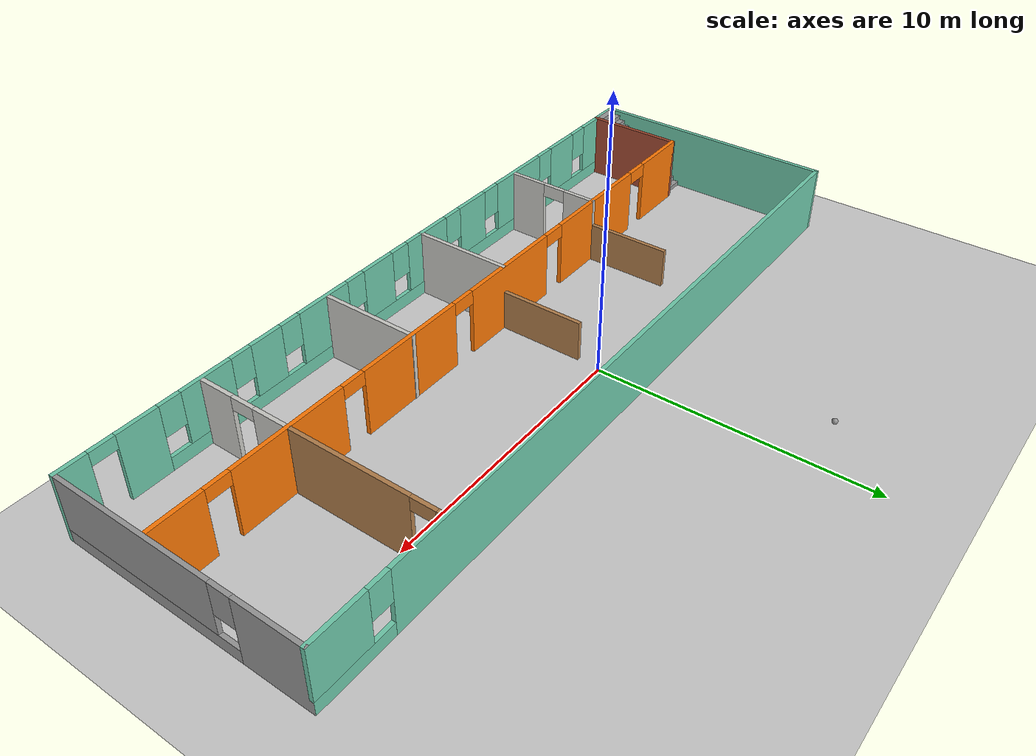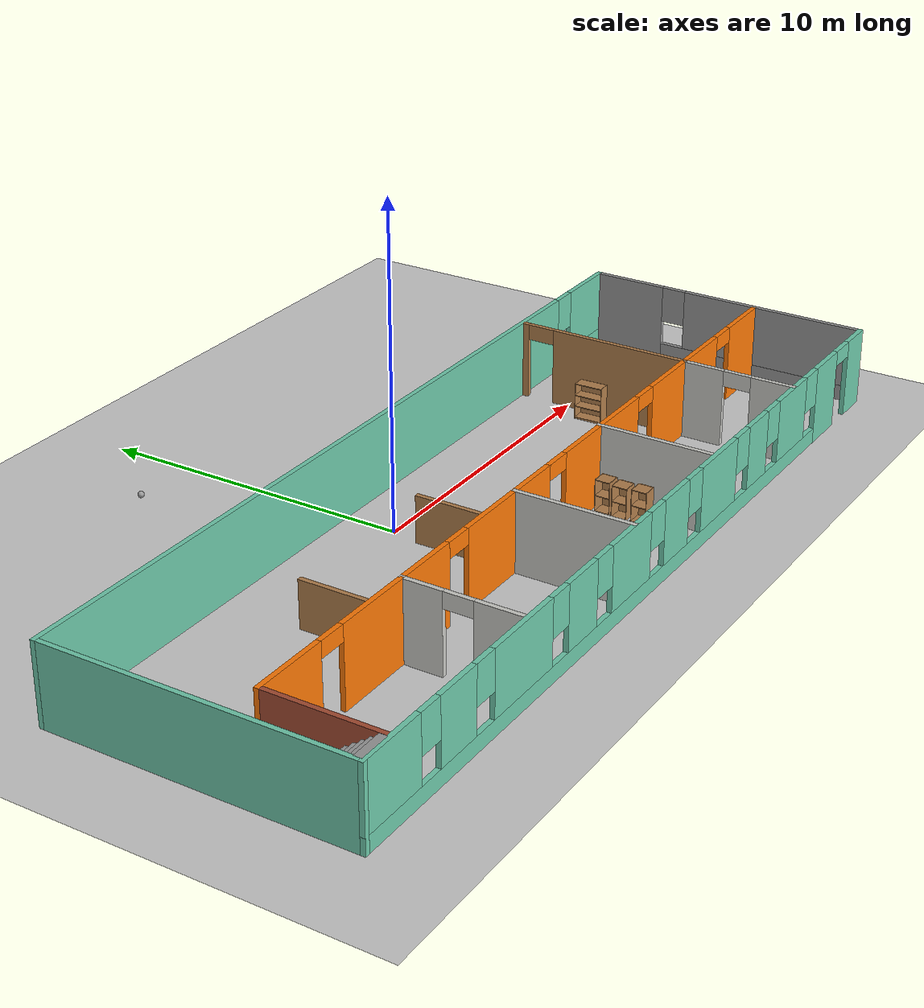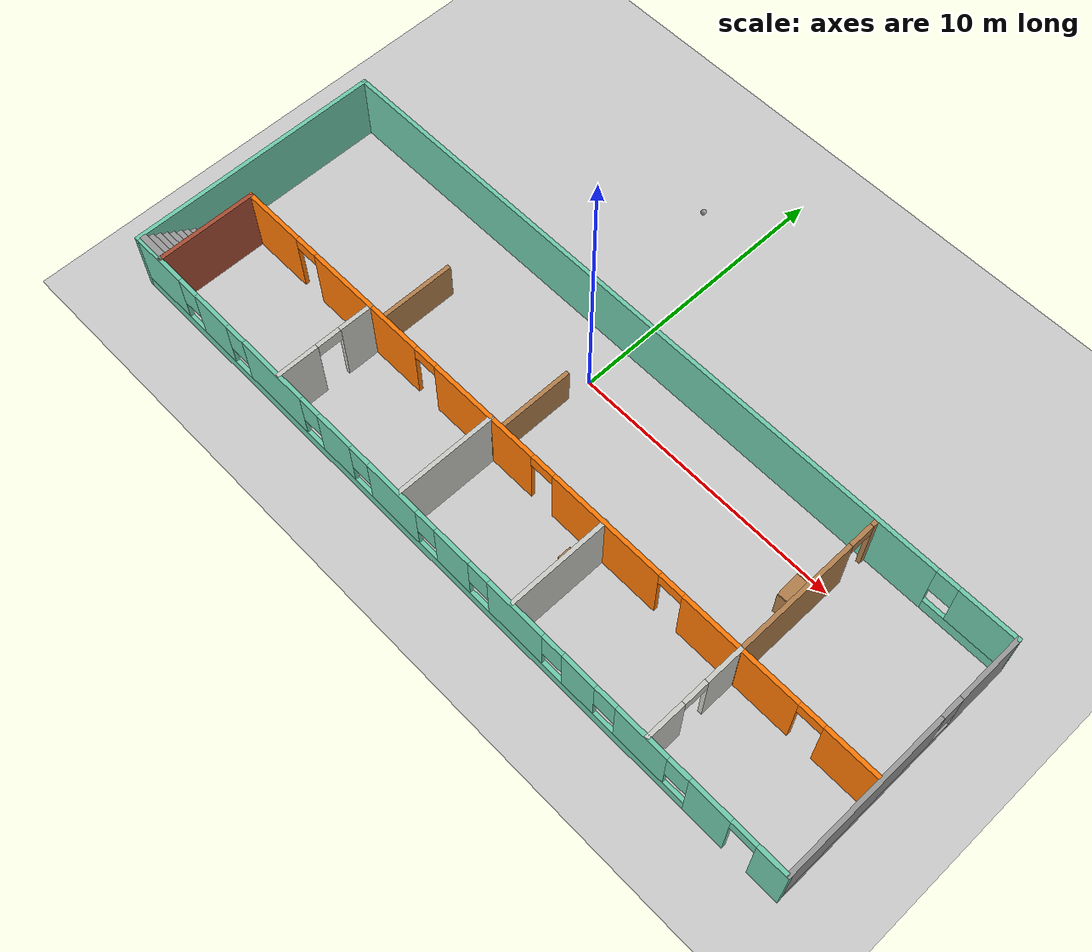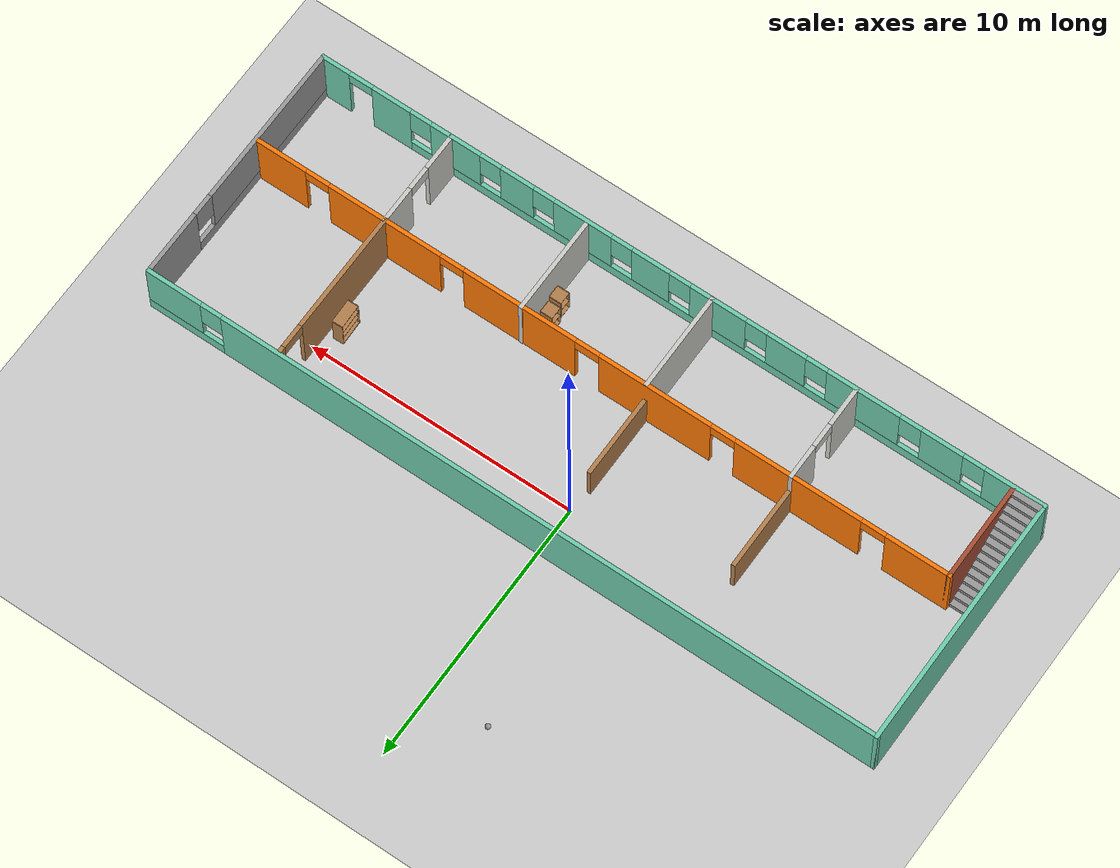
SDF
<sdf version="1.6">
 <world name="default">
  <plugin name="hello" filename="libhello.so"/>
  <light name="sun" type="directional">
   <pose>0 0 10 0 -0 0</pose>
   <diffuse>0.8 0.8 0.8 1</diffuse>
   <specular>0.2 0.2 0.2 1</specular>
   <attenuation>
    <range>1000</range>
    <constant>0.9</constant>
    <linear>0.01</linear>
    <quadratic>0.001</quadratic>
   </attenuation>
   <direction>-0.5 0.1 -0.9</direction>
  </light>
  <model name="ground_plane">
   <static>1</static>
   <link name="link">
    <collision name="collision">
     <geometry><plane><normal>0 0 1</normal><size>100 100</size></plane></geometry>
     <surface>
      <contact><collide_bitmask>65535</collide_bitmask></contact>
      <friction><ode><mu>100</mu><mu2>50</mu2></ode></friction>
     </surface>
    </collision>
    <visual name="visual">
     <cast_shadows>0</cast_shadows>
     <geometry><plane><normal>0 0 1</normal><size>100 100</size></plane></geometry>
     <material>
      <script><uri>file://media/materials/scripts/gazebo.material</uri><name>Gazebo/Grey</name></script>
     </material>
    </visual>
   </link>
  </model>
  <gravity>0 0 -9.8</gravity>
  <magnetic_field>6e-06 2.3e-05 -4.2e-05</magnetic_field>
  <atmosphere type="adiabatic"/>
  <physics name="default_physics" default="0" type="ode">
   <max_step_size>0.001</max_step_size>
   <real_time_factor>1</real_time_factor>
   <real_time_update_rate>1000</real_time_update_rate>
  </physics>
  <scene><ambient>0.4 0.4 0.4 1</ambient><background>0.7 0.7 0.7 1</background><shadows>1</shadows></scene>
  <spherical_coordinates>
   <surface_model>EARTH_WGS84</surface_model>
   <latitude_deg>0</latitude_deg>
   <longitude_deg>0</longitude_deg>
   <elevation>0</elevation>
   <heading_deg>0</heading_deg>
  </spherical_coordinates>
  <model name="cabinet">
   <static>1</static>
   <link name="cabinet_bottom_plate">
    <inertial>
     <pose>0 0 -1 0 -0 0</pose>
     <inertia><ixx>2.05</ixx><ixy>0</ixy><ixz>0</ixz><iyy>2.05</iyy><iyz>0</iyz><izz>2.05</izz></inertia>
     <mass>25</mass>
    </inertial>
    <collision name="cabinet_bottom_plate_geom">
     <pose>0 0 0.01 0 -0 0</pose>
     <geometry><box><size>0.45 0.45 0.02</size></box></geometry>
    </collision>
    <visual name="cabinet_bottom_plate_geom_visual">
     <pose>0 0 0.01 0 -0 0</pose>
     <geometry><box><size>0.45 0.45 0.02</size></box></geometry>
     <material>
      <script><uri>file://media/materials/scripts/gazebo.material</uri><name>Gazebo/Wood</name></script>
     </material>
    </visual>
    <collision name="cabinet_bottom_plate_geom_cabinet_back_plate">
     <pose>0.235 0 0.51 0 -0 0</pose>
     <geometry><box><size>0.02 0.45 1.02</size></box></geometry>
    </collision>
    <visual name="cabinet_bottom_plate_geom_cabinet_back_plate_visual">
     <pose>0.235 0 0.51 0 -0 0</pose>
     <geometry><box><size>0.02 0.45 1.02</size></box></geometry>
     <material>
      <script><uri>file://media/materials/scripts/gazebo.material</uri><name>Gazebo/Wood</name></script>
     </material>
    </visual>
    <collision name="cabinet_bottom_plate_geom_cabinet_left_plate">
     <pose>0 0.235 0.51 0 -0 0</pose>
     <geometry><box><size>0.45 0.02 1.02</size></box></geometry>
    </collision>
    <visual name="cabinet_bottom_plate_geom_cabinet_left_plate_visual">
     <pose>0 0.235 0.51 0 -0 0</pose>
     <geometry><box><size>0.45 0.02 1.02</size></box></geometry>
     <material>
      <script><uri>file://media/materials/scripts/gazebo.material</uri><name>Gazebo/Wood</name></script>
     </material>
    </visual>
    <collision name="cabinet_bottom_plate_geom_cabinet_middle_plate">
     <pose>0 0 0.51 0 -0 0</pose>
     <geometry><box><size>0.45 0.45 0.02</size></box></geometry>
    </collision>
    <visual name="cabinet_bottom_plate_geom_cabinet_middle_plate_visual">
     <pose>0 0 0.51 0 -0 0</pose>
     <geometry><box><size>0.45 0.45 0.02</size></box></geometry>
     <material>
      <script><uri>file://media/materials/scripts/gazebo.material</uri><name>Gazebo/Wood</name></script>
     </material>
    </visual>
    <collision name="cabinet_bottom_plate_geom_cabinet_right_plate">
     <pose>0 -0.235 0.51 0 -0 0</pose>
     <geometry><box><size>0.45 0.02 1.02</size></box></geometry>
    </collision>
    <visual name="cabinet_bottom_plate_geom_cabinet_right_plate_visual">
     <pose>0 -0.235 0.51 0 -0 0</pose>
     <geometry><box><size>0.45 0.02 1.02</size></box></geometry>
     <material>
      <script><uri>file://media/materials/scripts/gazebo.material</uri><name>Gazebo/Wood</name></script>
     </material>
    </visual>
    <collision name="cabinet_bottom_plate_geom_cabinet_top_plate">
     <pose>0 0 1.01 0 -0 0</pose>
     <geometry><box><size>0.45 0.45 0.02</size></box></geometry>
    </collision>
    <visual name="cabinet_bottom_plate_geom_cabinet_top_plate_visual">
     <pose>0 0 1.01 0 -0 0</pose>
     <geometry><box><size>0.45 0.45 0.02</size></box></geometry>
     <material>
      <script><uri>file://media/materials/scripts/gazebo.material</uri><name>Gazebo/Wood</name></script>
     </material>
    </visual>
   </link>
   <pose>4.32812 -5.59314 0 0 -0 0</pose>
  </model>
  <model name="cabinet_0">
   <static>1</static>
   <link name="cabinet_bottom_plate">
    <inertial>
     <pose>0 0 -1 0 -0 0</pose>
     <inertia><ixx>2.05</ixx><ixy>0</ixy><ixz>0</ixz><iyy>2.05</iyy><iyz>0</iyz><izz>2.05</izz></inertia>
     <mass>25</mass>
    </inertial>
    <collision name="cabinet_bottom_plate_geom">
     <pose>0 0 0.01 0 -0 0</pose>
     <geometry><box><size>0.45 0.45 0.02</size></box></geometry>
    </collision>
    <visual name="cabinet_bottom_plate_geom_visual">
     <pose>0 0 0.01 0 -0 0</pose>
     <geometry><box><size>0.45 0.45 0.02</size></box></geometry>
     <material>
      <script><uri>file://media/materials/scripts/gazebo.material</uri><name>Gazebo/Wood</name></script>
     </material>
    </visual>
    <collision name="cabinet_bottom_plate_geom_cabinet_back_plate">
     <pose>0.235 0 0.51 0 -0 0</pose>
     <geometry><box><size>0.02 0.45 1.02</size></box></geometry>
    </collision>
    <visual name="cabinet_bottom_plate_geom_cabinet_back_plate_visual">
     <pose>0.235 0 0.51 0 -0 0</pose>
     <geometry><box><size>0.02 0.45 1.02</size></box></geometry>
     <material>
      <script><uri>file://media/materials/scripts/gazebo.material</uri><name>Gazebo/Wood</name></script>
     </material>
    </visual>
    <collision name="cabinet_bottom_plate_geom_cabinet_left_plate">
     <pose>0 0.235 0.51 0 -0 0</pose>
     <geometry><box><size>0.45 0.02 1.02</size></box></geometry>
    </collision>
    <visual name="cabinet_bottom_plate_geom_cabinet_left_plate_visual">
     <pose>0 0.235 0.51 0 -0 0</pose>
     <geometry><box><size>0.45 0.02 1.02</size></box></geometry>
     <material>
      <script><uri>file://media/materials/scripts/gazebo.material</uri><name>Gazebo/Wood</name></script>
     </material>
    </visual>
    <collision name="cabinet_bottom_plate_geom_cabinet_middle_plate">
     <pose>0 0 0.51 0 -0 0</pose>
     <geometry><box><size>0.45 0.45 0.02</size></box></geometry>
    </collision>
    <visual name="cabinet_bottom_plate_geom_cabinet_middle_plate_visual">
     <pose>0 0 0.51 0 -0 0</pose>
     <geometry><box><size>0.45 0.45 0.02</size></box></geometry>
     <material>
      <script><uri>file://media/materials/scripts/gazebo.material</uri><name>Gazebo/Wood</name></script>
     </material>
    </visual>
    <collision name="cabinet_bottom_plate_geom_cabinet_right_plate">
     <pose>0 -0.235 0.51 0 -0 0</pose>
     <geometry><box><size>0.45 0.02 1.02</size></box></geometry>
    </collision>
    <visual name="cabinet_bottom_plate_geom_cabinet_right_plate_visual">
     <pose>0 -0.235 0.51 0 -0 0</pose>
     <geometry><box><size>0.45 0.02 1.02</size></box></geometry>
     <material>
      <script><uri>file://media/materials/scripts/gazebo.material</uri><name>Gazebo/Wood</name></script>
     </material>
    </visual>
    <collision name="cabinet_bottom_plate_geom_cabinet_top_plate">
     <pose>0 0 1.01 0 -0 0</pose>
     <geometry><box><size>0.45 0.45 0.02</size></box></geometry>
    </collision>
    <visual name="cabinet_bottom_plate_geom_cabinet_top_plate_visual">
     <pose>0 0 1.01 0 -0 0</pose>
     <geometry><box><size>0.45 0.45 0.02</size></box></geometry>
     <material>
      <script><uri>file://media/materials/scripts/gazebo.material</uri><name>Gazebo/Wood</name></script>
     </material>
    </visual>
   </link>
   <pose>4.25631 -5.00246 0 0 -0 0</pose>
  </model>
  <model name="cabinet_1">
   <static>1</static>
   <link name="cabinet_bottom_plate">
    <inertial>
     <pose>0 0 -1 0 -0 0</pose>
     <inertia><ixx>2.05</ixx><ixy>0</ixy><ixz>0</ixz><iyy>2.05</iyy><iyz>0</iyz><izz>2.05</izz></inertia>
     <mass>25</mass>
    </inertial>
    <collision name="cabinet_bottom_plate_geom">
     <pose>0 0 0.01 0 -0 0</pose>
     <geometry><box><size>0.45 0.45 0.02</size></box></geometry>
    </collision>
    <visual name="cabinet_bottom_plate_geom_visual">
     <pose>0 0 0.01 0 -0 0</pose>
     <geometry><box><size>0.45 0.45 0.02</size></box></geometry>
     <material>
      <script><uri>file://media/materials/scripts/gazebo.material</uri><name>Gazebo/Wood</name></script>
     </material>
    </visual>
    <collision name="cabinet_bottom_plate_geom_cabinet_back_plate">
     <pose>0.235 0 0.51 0 -0 0</pose>
     <geometry><box><size>0.02 0.45 1.02</size></box></geometry>
    </collision>
    <visual name="cabinet_bottom_plate_geom_cabinet_back_plate_visual">
     <pose>0.235 0 0.51 0 -0 0</pose>
     <geometry><box><size>0.02 0.45 1.02</size></box></geometry>
     <material>
      <script><uri>file://media/materials/scripts/gazebo.material</uri><name>Gazebo/Wood</name></script>
     </material>
    </visual>
    <collision name="cabinet_bottom_plate_geom_cabinet_left_plate">
     <pose>0 0.235 0.51 0 -0 0</pose>
     <geometry><box><size>0.45 0.02 1.02</size></box></geometry>
    </collision>
    <visual name="cabinet_bottom_plate_geom_cabinet_left_plate_visual">
     <pose>0 0.235 0.51 0 -0 0</pose>
     <geometry><box><size>0.45 0.02 1.02</size></box></geometry>
     <material>
      <script><uri>file://media/materials/scripts/gazebo.material</uri><name>Gazebo/Wood</name></script>
     </material>
    </visual>
    <collision name="cabinet_bottom_plate_geom_cabinet_middle_plate">
     <pose>0 0 0.51 0 -0 0</pose>
     <geometry><box><size>0.45 0.45 0.02</size></box></geometry>
    </collision>
    <visual name="cabinet_bottom_plate_geom_cabinet_middle_plate_visual">
     <pose>0 0 0.51 0 -0 0</pose>
     <geometry><box><size>0.45 0.45 0.02</size></box></geometry>
     <material>
      <script><uri>file://media/materials/scripts/gazebo.material</uri><name>Gazebo/Wood</name></script>
     </material>
    </visual>
    <collision name="cabinet_bottom_plate_geom_cabinet_right_plate">
     <pose>0 -0.235 0.51 0 -0 0</pose>
     <geometry><box><size>0.45 0.02 1.02</size></box></geometry>
    </collision>
    <visual name="cabinet_bottom_plate_geom_cabinet_right_plate_visual">
     <pose>0 -0.235 0.51 0 -0 0</pose>
     <geometry><box><size>0.45 0.02 1.02</size></box></geometry>
     <material>
      <script><uri>file://media/materials/scripts/gazebo.material</uri><name>Gazebo/Wood</name></script>
     </material>
    </visual>
    <collision name="cabinet_bottom_plate_geom_cabinet_top_plate">
     <pose>0 0 1.01 0 -0 0</pose>
     <geometry><box><size>0.45 0.45 0.02</size></box></geometry>
    </collision>
    <visual name="cabinet_bottom_plate_geom_cabinet_top_plate_visual">
     <pose>0 0 1.01 0 -0 0</pose>
     <geometry><box><size>0.45 0.45 0.02</size></box></geometry>
     <material>
      <script><uri>file://media/materials/scripts/gazebo.material</uri><name>Gazebo/Wood</name></script>
     </material>
    </visual>
   </link>
   <pose>4.33213 -4.41527 0 0 -0 0</pose>
  </model>
  <model name="bookshelf">
   <static>1</static>
   <link name="link">
    <inertial><mass>1</mass></inertial>
    <collision name="back">
     <pose>0 0.005 0.6 0 -0 0</pose>
     <geometry><box><size>0.9 0.01 1.2</size></box></geometry>
    </collision>
    <visual name="visual1">
     <pose>0 0.005 0.6 0 -0 0</pose>
     <geometry><box><size>0.9 0.01 1.2</size></box></geometry>
     <material>
      <script><uri>file://media/materials/scripts/gazebo.material</uri><name>Gazebo/Wood</name></script>
     </material>
    </visual>
    <collision name="left_side">
     <pose>0.45 -0.195 0.6 0 -0 0</pose>
     <geometry><box><size>0.02 0.4 1.2</size></box></geometry>
    </collision>
    <visual name="visual2">
     <pose>0.45 -0.195 0.6 0 -0 0</pose>
     <geometry><box><size>0.02 0.4 1.2</size></box></geometry>
     <material>
      <script><uri>file://media/materials/scripts/gazebo.material</uri><name>Gazebo/Wood</name></script>
     </material>
    </visual>
    <collision name="right_side">
     <pose>-0.45 -0.195 0.6 0 -0 0</pose>
     <geometry><box><size>0.02 0.4 1.2</size></box></geometry>
    </collision>
    <visual name="visual3">
     <pose>-0.45 -0.195 0.6 0 -0 0</pose>
     <geometry><box><size>0.02 0.4 1.2</size></box></geometry>
     <material>
      <script><uri>file://media/materials/scripts/gazebo.material</uri><name>Gazebo/Wood</name></script>
     </material>
    </visual>
    <collision name="bottom">
     <pose>0 -0.195 0.03 0 -0 0</pose>
     <geometry><box><size>0.88 0.4 0.06</size></box></geometry>
    </collision>
    <visual name="visual4">
     <pose>0 -0.195 0.03 0 -0 0</pose>
     <geometry><box><size>0.88 0.4 0.06</size></box></geometry>
     <material>
      <script><uri>file://media/materials/scripts/gazebo.material</uri><name>Gazebo/Wood</name></script>
     </material>
    </visual>
    <collision name="top">
     <pose>0 -0.195 1.19 0 -0 0</pose>
     <geometry><box><size>0.88 0.4 0.02</size></box></geometry>
    </collision>
    <visual name="visual5">
     <pose>0 -0.195 1.19 0 -0 0</pose>
     <geometry><box><size>0.88 0.4 0.02</size></box></geometry>
     <material>
      <script><uri>file://media/materials/scripts/gazebo.material</uri><name>Gazebo/Wood</name></script>
     </material>
    </visual>
    <collision name="low_shelf">
     <pose>0 -0.195 0.43 0 -0 0</pose>
     <geometry><box><size>0.88 0.4 0.02</size></box></geometry>
    </collision>
    <visual name="visual6">
     <pose>0 -0.195 0.43 0 -0 0</pose>
     <geometry><box><size>0.88 0.4 0.02</size></box></geometry>
     <material>
      <script><uri>file://media/materials/scripts/gazebo.material</uri><name>Gazebo/Wood</name></script>
     </material>
    </visual>
    <collision name="high_shelf">
     <pose>0 -0.195 0.8 0 -0 0</pose>
     <geometry><box><size>0.88 0.4 0.02</size></box></geometry>
    </collision>
    <visual name="visual7">
     <pose>0 -0.195 0.8 0 -0 0</pose>
     <geometry><box><size>0.88 0.4 0.02</size></box></geometry>
     <material>
      <script><uri>file://media/materials/scripts/gazebo.material</uri><name>Gazebo/Wood</name></script>
     </material>
    </visual>
   </link>
   <pose>9.64485 -1.08676 0 0 0 -1.5382</pose>
  </model>
  <model name="Room2">
   <pose>1.20997 -2.96921 0 0 -0 0</pose>
   <link name="Stairs_0">
    <visual name="Stairs_0_Visual_0">
     <pose>-13.2569 -1.25437 0.083333 0 -0 0</pose>
     <geometry><box><size>1 0.233333 0.166667</size></box></geometry>
     <material>
      <script><uri>file://media/materials/scripts/gazebo.material</uri><name>Gazebo/Grey</name></script>
      <ambient>1 1 1 1</ambient>
     </material>
     <meta><layer>0</layer></meta>
    </visual>
    <collision name="Stairs_0_Collision_0">
     <geometry><box><size>1 0.233333 0.166667</size></box></geometry>
     <pose>-13.2569 -1.25437 0.083333 0 -0 0</pose>
    </collision>
    <visual name="Stairs_0_Visual_1">
     <pose>-13.2569 -1.4877 0.25 0 -0 0</pose>
     <geometry><box><size>1 0.233333 0.166667</size></box></geometry>
     <material>
      <script><uri>file://media/materials/scripts/gazebo.material</uri><name>Gazebo/Grey</name></script>
      <ambient>1 1 1 1</ambient>
     </material>
     <meta><layer>0</layer></meta>
    </visual>
    <collision name="Stairs_0_Collision_1">
     <geometry><box><size>1 0.233333 0.166667</size></box></geometry>
     <pose>-13.2569 -1.4877 0.25 0 -0 0</pose>
    </collision>
    <visual name="Stairs_0_Visual_2">
     <pose>-13.2569 -1.72104 0.416667 0 -0 0</pose>
     <geometry><box><size>1 0.233333 0.166667</size></box></geometry>
     <material>
      <script><uri>file://media/materials/scripts/gazebo.material</uri><name>Gazebo/Grey</name></script>
      <ambient>1 1 1 1</ambient>
     </material>
     <meta><layer>0</layer></meta>
    </visual>
    <collision name="Stairs_0_Collision_2">
     <geometry><box><size>1 0.233333 0.166667</size></box></geometry>
     <pose>-13.2569 -1.72104 0.416667 0 -0 0</pose>
    </collision>
    <visual name="Stairs_0_Visual_3">
     <pose>-13.2569 -1.95437 0.583333 0 -0 0</pose>
     <geometry><box><size>1 0.233333 0.166667</size></box></geometry>
     <material>
      <script><uri>file://media/materials/scripts/gazebo.material</uri><name>Gazebo/Grey</name></script>
      <ambient>1 1 1 1</ambient>
     </material>
     <meta><layer>0</layer></meta>
    </visual>
    <collision name="Stairs_0_Collision_3">
     <geometry><box><size>1 0.233333 0.166667</size></box></geometry>
     <pose>-13.2569 -1.95437 0.583333 0 -0 0</pose>
    </collision>
    <visual name="Stairs_0_Visual_4">
     <pose>-13.2569 -2.1877 0.75 0 -0 0</pose>
     <geometry><box><size>1 0.233333 0.166667</size></box></geometry>
     <material>
      <script><uri>file://media/materials/scripts/gazebo.material</uri><name>Gazebo/Grey</name></script>
      <ambient>1 1 1 1</ambient>
     </material>
     <meta><layer>0</layer></meta>
    </visual>
    <collision name="Stairs_0_Collision_4">
     <geometry><box><size>1 0.233333 0.166667</size></box></geometry>
     <pose>-13.2569 -2.1877 0.75 0 -0 0</pose>
    </collision>
    <visual name="Stairs_0_Visual_5">
     <pose>-13.2569 -2.42104 0.916667 0 -0 0</pose>
     <geometry><box><size>1 0.233333 0.166667</size></box></geometry>
     <material>
      <script><uri>file://media/materials/scripts/gazebo.material</uri><name>Gazebo/Grey</name></script>
      <ambient>1 1 1 1</ambient>
     </material>
     <meta><layer>0</layer></meta>
    </visual>
    <collision name="Stairs_0_Collision_5">
     <geometry><box><size>1 0.233333 0.166667</size></box></geometry>
     <pose>-13.2569 -2.42104 0.916667 0 -0 0</pose>
    </collision>
    <visual name="Stairs_0_Visual_6">
     <pose>-13.2569 -2.65437 1.08333 0 -0 0</pose>
     <geometry><box><size>1 0.233333 0.166667</size></box></geometry>
     <material>
      <script><uri>file://media/materials/scripts/gazebo.material</uri><name>Gazebo/Grey</name></script>
      <ambient>1 1 1 1</ambient>
     </material>
     <meta><layer>0</layer></meta>
    </visual>
    <collision name="Stairs_0_Collision_6">
     <geometry><box><size>1 0.233333 0.166667</size></box></geometry>
     <pose>-13.2569 -2.65437 1.08333 0 -0 0</pose>
    </collision>
    <visual name="Stairs_0_Visual_7">
     <pose>-13.2569 -2.8877 1.25 0 -0 0</pose>
     <geometry><box><size>1 0.233333 0.166667</size></box></geometry>
     <material>
      <script><uri>file://media/materials/scripts/gazebo.material</uri><name>Gazebo/Grey</name></script>
      <ambient>1 1 1 1</ambient>
     </material>
     <meta><layer>0</layer></meta>
    </visual>
    <collision name="Stairs_0_Collision_7">
     <geometry><box><size>1 0.233333 0.166667</size></box></geometry>
     <pose>-13.2569 -2.8877 1.25 0 -0 0</pose>
    </collision>
    <visual name="Stairs_0_Visual_8">
     <pose>-13.2569 -3.12104 1.41667 0 -0 0</pose>
     <geometry><box><size>1 0.233333 0.166667</size></box></geometry>
     <material>
      <script><uri>file://media/materials/scripts/gazebo.material</uri><name>Gazebo/Grey</name></script>
      <ambient>1 1 1 1</ambient>
     </material>
     <meta><layer>0</layer></meta>
    </visual>
    <collision name="Stairs_0_Collision_8">
     <geometry><box><size>1 0.233333 0.166667</size></box></geometry>
     <pose>-13.2569 -3.12104 1.41667 0 -0 0</pose>
    </collision>
    <visual name="Stairs_0_Visual_9">
     <pose>-13.2569 -3.35437 1.58333 0 -0 0</pose>
     <geometry><box><size>1 0.233333 0.166667</size></box></geometry>
     <material>
      <script><uri>file://media/materials/scripts/gazebo.material</uri><name>Gazebo/Grey</name></script>
      <ambient>1 1 1 1</ambient>
     </material>
     <meta><layer>0</layer></meta>
    </visual>
    <collision name="Stairs_0_Collision_9">
     <geometry><box><size>1 0.233333 0.166667</size></box></geometry>
     <pose>-13.2569 -3.35437 1.58333 0 -0 0</pose>
    </collision>
    <visual name="Stairs_0_Visual_10">
     <pose>-13.2569 -3.5877 1.75 0 -0 0</pose>
     <geometry><box><size>1 0.233333 0.166667</size></box></geometry>
     <material>
      <script><uri>file://media/materials/scripts/gazebo.material</uri><name>Gazebo/Grey</name></script>
      <ambient>1 1 1 1</ambient>
     </material>
     <meta><layer>0</layer></meta>
    </visual>
    <collision name="Stairs_0_Collision_10">
     <geometry><box><size>1 0.233333 0.166667</size></box></geometry>
     <pose>-13.2569 -3.5877 1.75 0 -0 0</pose>
    </collision>
    <visual name="Stairs_0_Visual_11">
     <pose>-13.2569 -3.82104 1.91667 0 -0 0</pose>
     <geometry><box><size>1 0.233333 0.166667</size></box></geometry>
     <material>
      <script><uri>file://media/materials/scripts/gazebo.material</uri><name>Gazebo/Grey</name></script>
      <ambient>1 1 1 1</ambient>
     </material>
     <meta><layer>0</layer></meta>
    </visual>
    <collision name="Stairs_0_Collision_11">
     <geometry><box><size>1 0.233333 0.166667</size></box></geometry>
     <pose>-13.2569 -3.82104 1.91667 0 -0 0</pose>
    </collision>
    <visual name="Stairs_0_Visual_12">
     <pose>-13.2569 -4.05437 2.08333 0 -0 0</pose>
     <geometry><box><size>1 0.233333 0.166667</size></box></geometry>
     <material>
      <script><uri>file://media/materials/scripts/gazebo.material</uri><name>Gazebo/Grey</name></script>
      <ambient>1 1 1 1</ambient>
     </material>
     <meta><layer>0</layer></meta>
    </visual>
    <collision name="Stairs_0_Collision_12">
     <geometry><box><size>1 0.233333 0.166667</size></box></geometry>
     <pose>-13.2569 -4.05437 2.08333 0 -0 0</pose>
    </collision>
    <visual name="Stairs_0_Visual_13">
     <pose>-13.2569 -4.2877 2.25 0 -0 0</pose>
     <geometry><box><size>1 0.233333 0.166667</size></box></geometry>
     <material>
      <script><uri>file://media/materials/scripts/gazebo.material</uri><name>Gazebo/Grey</name></script>
      <ambient>1 1 1 1</ambient>
     </material>
     <meta><layer>0</layer></meta>
    </visual>
    <collision name="Stairs_0_Collision_13">
     <geometry><box><size>1 0.233333 0.166667</size></box></geometry>
     <pose>-13.2569 -4.2877 2.25 0 -0 0</pose>
    </collision>
    <visual name="Stairs_0_Visual_14">
     <pose>-13.2569 -4.52104 2.41667 0 -0 0</pose>
     <geometry><box><size>1 0.233333 0.166667</size></box></geometry>
     <material>
      <script><uri>file://media/materials/scripts/gazebo.material</uri><name>Gazebo/Grey</name></script>
      <ambient>1 1 1 1</ambient>
     </material>
     <meta><layer>0</layer></meta>
    </visual>
    <collision name="Stairs_0_Collision_14">
     <geometry><box><size>1 0.233333 0.166667</size></box></geometry>
     <pose>-13.2569 -4.52104 2.41667 0 -0 0</pose>
    </collision>
   </link>
   <link name="Wall_1">
    <pose>0 4.675 0 0 -0 0</pose>
    <visual name="Wall_1_Visual_0">
     <pose>-1.46652 0 1.25 0 -0 0</pose>
     <geometry><box><size>24.817 0.15 2.5</size></box></geometry>
     <material>
      <script><uri>file://media/materials/scripts/gazebo.material</uri><name>Gazebo/Grey</name></script>
      <ambient>0.435294 0.796078 0.67451 1</ambient>
     </material>
     <meta><layer>0</layer></meta>
    </visual>
    <collision name="Wall_1_Collision_0">
     <geometry><box><size>24.817 0.15 2.5</size></box></geometry>
     <pose>-1.46652 0 1.25 0 -0 0</pose>
    </collision>
    <visual name="Wall_1_Visual_1">
     <pose>12.4085 0 0.25 0 -0 0</pose>
     <geometry><box><size>2.93303 0.15 0.5</size></box></geometry>
     <material>
      <script><uri>file://media/materials/scripts/gazebo.material</uri><name>Gazebo/Grey</name></script>
      <ambient>0.435294 0.796078 0.67451 1</ambient>
     </material>
     <meta><layer>0</layer></meta>
    </visual>
    <collision name="Wall_1_Collision_1">
     <geometry><box><size>2.93303 0.15 0.5</size></box></geometry>
     <pose>12.4085 0 0.25 0 -0 0</pose>
    </collision>
    <visual name="Wall_1_Visual_2">
     <pose>12.8085 0 1.5 0 -0 0</pose>
     <geometry><box><size>2.13304 0.15 2</size></box></geometry>
     <material>
      <script><uri>file://media/materials/scripts/gazebo.material</uri><name>Gazebo/Grey</name></script>
      <ambient>0.435294 0.796078 0.67451 1</ambient>
     </material>
     <meta><layer>0</layer></meta>
    </visual>
    <collision name="Wall_1_Collision_2">
     <geometry><box><size>2.13304 0.15 2</size></box></geometry>
     <pose>12.8085 0 1.5 0 -0 0</pose>
    </collision>
    <visual name="Wall_1_Visual_3">
     <pose>11.342 0 1.9 0 -0 0</pose>
     <geometry><box><size>0.8 0.15 1.2</size></box></geometry>
     <material>
      <script><uri>file://media/materials/scripts/gazebo.material</uri><name>Gazebo/Grey</name></script>
      <ambient>0.435294 0.796078 0.67451 1</ambient>
     </material>
     <meta><layer>0</layer></meta>
    </visual>
    <collision name="Wall_1_Collision_3">
     <geometry><box><size>0.8 0.15 1.2</size></box></geometry>
     <pose>11.342 0 1.9 0 -0 0</pose>
    </collision>
   </link>
   <link name="Wall_14">
    <pose>-6.80029 -2.83718 0 0 0 -1.5709</pose>
    <visual name="Wall_14_Visual_0">
     <pose>-1.21773 0 1.25 0 -0 0</pose>
     <geometry><box><size>1.31454 0.15 2.5</size></box></geometry>
     <material>
      <script><uri>file://media/materials/scripts/gazebo.material</uri><name>Gazebo/CeilingTiled</name></script>
      <ambient>1 1 1 1</ambient>
     </material>
     <meta><layer>0</layer></meta>
    </visual>
    <collision name="Wall_14_Collision_0">
     <geometry><box><size>1.31454 0.15 2.5</size></box></geometry>
     <pose>-1.21773 0 1.25 0 -0 0</pose>
    </collision>
    <visual name="Wall_14_Visual_1">
     <pose>1.10727 0 1.25 0 -0 0</pose>
     <geometry><box><size>1.53546 0.15 2.5</size></box></geometry>
     <material>
      <script><uri>file://media/materials/scripts/gazebo.material</uri><name>Gazebo/CeilingTiled</name></script>
      <ambient>1 1 1 1</ambient>
     </material>
     <meta><layer>0</layer></meta>
    </visual>
    <collision name="Wall_14_Collision_1">
     <geometry><box><size>1.53546 0.15 2.5</size></box></geometry>
     <pose>1.10727 0 1.25 0 -0 0</pose>
    </collision>
    <visual name="Wall_14_Visual_2">
     <pose>-0.110464 0 2.25 0 -0 0</pose>
     <geometry><box><size>0.9 0.15 0.5</size></box></geometry>
     <material>
      <script><uri>file://media/materials/scripts/gazebo.material</uri><name>Gazebo/CeilingTiled</name></script>
      <ambient>1 1 1 1</ambient>
     </material>
     <meta><layer>0</layer></meta>
    </visual>
    <collision name="Wall_14_Collision_2">
     <geometry><box><size>0.9 0.15 0.5</size></box></geometry>
     <pose>-0.110464 0 2.25 0 -0 0</pose>
    </collision>
   </link>
   <link name="Wall_16">
    <collision name="Wall_16_Collision">
     <geometry><box><size>3.75 0.15 2.5</size></box></geometry>
     <pose>0 0 1.25 0 -0 0</pose>
    </collision>
    <visual name="Wall_16_Visual">
     <pose>0 0 1.25 0 -0 0</pose>
     <geometry><box><size>3.75 0.15 2.5</size></box></geometry>
     <material>
      <script><uri>file://media/materials/scripts/gazebo.material</uri><name>Gazebo/CeilingTiled</name></script>
      <ambient>1 1 1 1</ambient>
     </material>
     <meta><layer>0</layer></meta>
    </visual>
    <pose>-1.32935 -2.85724 0 0 0 -1.57093</pose>
   </link>
   <link name="Wall_2">
    <pose>13.8 0 0 0 0 -1.5708</pose>
    <visual name="Wall_2_Visual_0">
     <pose>-3.49449 0 1.25 0 -0 0</pose>
     <geometry><box><size>2.51101 0.15 2.5</size></box></geometry>
     <material>
      <script><uri>file://media/materials/scripts/gazebo.material</uri><name>Gazebo/Grey</name></script>
      <ambient>1 1 1 1</ambient>
     </material>
     <meta><layer>0</layer></meta>
    </visual>
    <collision name="Wall_2_Collision_0">
     <geometry><box><size>2.51101 0.15 2.5</size></box></geometry>
     <pose>-3.49449 0 1.25 0 -0 0</pose>
    </collision>
    <visual name="Wall_2_Visual_1">
     <pose>1.25551 0 0.25 0 -0 0</pose>
     <geometry><box><size>6.98899 0.15 0.5</size></box></geometry>
     <material>
      <script><uri>file://media/materials/scripts/gazebo.material</uri><name>Gazebo/Grey</name></script>
      <ambient>1 1 1 1</ambient>
     </material>
     <meta><layer>0</layer></meta>
    </visual>
    <collision name="Wall_2_Collision_1">
     <geometry><box><size>6.98899 0.15 0.5</size></box></geometry>
     <pose>1.25551 0 0.25 0 -0 0</pose>
    </collision>
    <visual name="Wall_2_Visual_2">
     <pose>1.65551 0 1.5 0 -0 0</pose>
     <geometry><box><size>6.18899 0.15 2</size></box></geometry>
     <material>
      <script><uri>file://media/materials/scripts/gazebo.material</uri><name>Gazebo/Grey</name></script>
      <ambient>1 1 1 1</ambient>
     </material>
     <meta><layer>0</layer></meta>
    </visual>
    <collision name="Wall_2_Collision_2">
     <geometry><box><size>6.18899 0.15 2</size></box></geometry>
     <pose>1.65551 0 1.5 0 -0 0</pose>
    </collision>
    <visual name="Wall_2_Visual_3">
     <pose>-1.83899 0 1.9 0 -0 0</pose>
     <geometry><box><size>0.8 0.15 1.2</size></box></geometry>
     <material>
      <script><uri>file://media/materials/scripts/gazebo.material</uri><name>Gazebo/Grey</name></script>
      <ambient>1 1 1 1</ambient>
     </material>
     <meta><layer>0</layer></meta>
    </visual>
    <collision name="Wall_2_Collision_3">
     <geometry><box><size>0.8 0.15 1.2</size></box></geometry>
     <pose>-1.83899 0 1.9 0 -0 0</pose>
    </collision>
   </link>
   <link name="Wall_20">
    <collision name="Wall_20_Collision">
     <geometry><box><size>3.75 0.15 2.5</size></box></geometry>
     <pose>0 0 1.25 0 -0 0</pose>
    </collision>
    <visual name="Wall_20_Visual">
     <pose>0 0 1.25 0 -0 0</pose>
     <geometry><box><size>3.75 0.15 2.5</size></box></geometry>
     <material>
      <script><uri>file://media/materials/scripts/gazebo.material</uri><name>Gazebo/CeilingTiled</name></script>
      <ambient>1 1 1 1</ambient>
     </material>
     <meta><layer>0</layer></meta>
    </visual>
    <pose>3.43733 -2.81714 0 0 0 -1.5708</pose>
   </link>
   <link name="Wall_22">
    <pose>8.74731 -2.85737 0 0 0 -1.5708</pose>
    <visual name="Wall_22_Visual_0">
     <pose>-1.16745 0 1.25 0 -0 0</pose>
     <geometry><box><size>1.41511 0.15 2.5</size></box></geometry>
     <material>
      <script><uri>file://media/materials/scripts/gazebo.material</uri><name>Gazebo/CeilingTiled</name></script>
      <ambient>1 1 1 1</ambient>
     </material>
     <meta><layer>0</layer></meta>
    </visual>
    <collision name="Wall_22_Collision_0">
     <geometry><box><size>1.41511 0.15 2.5</size></box></geometry>
     <pose>-1.16745 0 1.25 0 -0 0</pose>
    </collision>
    <visual name="Wall_22_Visual_1">
     <pose>1.15755 0 1.25 0 -0 0</pose>
     <geometry><box><size>1.43489 0.15 2.5</size></box></geometry>
     <material>
      <script><uri>file://media/materials/scripts/gazebo.material</uri><name>Gazebo/CeilingTiled</name></script>
      <ambient>1 1 1 1</ambient>
     </material>
     <meta><layer>0</layer></meta>
    </visual>
    <collision name="Wall_22_Collision_1">
     <geometry><box><size>1.43489 0.15 2.5</size></box></geometry>
     <pose>1.15755 0 1.25 0 -0 0</pose>
    </collision>
    <visual name="Wall_22_Visual_2">
     <pose>-0.009892 0 2.25 0 -0 0</pose>
     <geometry><box><size>0.9 0.15 0.5</size></box></geometry>
     <material>
      <script><uri>file://media/materials/scripts/gazebo.material</uri><name>Gazebo/CeilingTiled</name></script>
      <ambient>1 1 1 1</ambient>
     </material>
     <meta><layer>0</layer></meta>
    </visual>
    <collision name="Wall_22_Collision_2">
     <geometry><box><size>0.9 0.15 0.5</size></box></geometry>
     <pose>-0.009892 0 2.25 0 -0 0</pose>
    </collision>
   </link>
   <link name="Wall_24">
    <pose>8.74731 1.74263 0 0 -0 1.5708</pose>
    <visual name="Wall_24_Visual_0">
     <pose>-0.55836 0 1.25 0 -0 0</pose>
     <geometry><box><size>4.63328 0.15 2.5</size></box></geometry>
     <material>
      <script><uri>file://media/materials/scripts/gazebo.material</uri><name>Gazebo/Wood</name></script>
      <ambient>1 1 1 1</ambient>
     </material>
     <meta><layer>0</layer></meta>
    </visual>
    <collision name="Wall_24_Collision_0">
     <geometry><box><size>4.63328 0.15 2.5</size></box></geometry>
     <pose>-0.55836 0 1.25 0 -0 0</pose>
    </collision>
    <visual name="Wall_24_Visual_1">
     <pose>2.76664 0 1.25 0 -0 0</pose>
     <geometry><box><size>0.216721 0.15 2.5</size></box></geometry>
     <material>
      <script><uri>file://media/materials/scripts/gazebo.material</uri><name>Gazebo/Wood</name></script>
      <ambient>1 1 1 1</ambient>
     </material>
     <meta><layer>0</layer></meta>
    </visual>
    <collision name="Wall_24_Collision_1">
     <geometry><box><size>0.216721 0.15 2.5</size></box></geometry>
     <pose>2.76664 0 1.25 0 -0 0</pose>
    </collision>
    <visual name="Wall_24_Visual_2">
     <pose>2.20828 0 2.25 0 -0 0</pose>
     <geometry><box><size>0.9 0.15 0.5</size></box></geometry>
     <material>
      <script><uri>file://media/materials/scripts/gazebo.material</uri><name>Gazebo/Wood</name></script>
      <ambient>1 1 1 1</ambient>
     </material>
     <meta><layer>0</layer></meta>
    </visual>
    <collision name="Wall_24_Collision_2">
     <geometry><box><size>0.9 0.15 0.5</size></box></geometry>
     <pose>2.20828 0 2.25 0 -0 0</pose>
    </collision>
   </link>
   <link name="Wall_26">
    <collision name="Wall_26_Collision">
     <geometry><box><size>3.25 0.15 1.5</size></box></geometry>
     <pose>0 0 0.75 0 -0 0</pose>
    </collision>
    <visual name="Wall_26_Visual">
     <pose>0 0 0.75 0 -0 0</pose>
     <geometry><box><size>3.25 0.15 1.5</size></box></geometry>
     <material>
      <script><uri>file://media/materials/scripts/gazebo.material</uri><name>Gazebo/Wood</name></script>
      <ambient>1 1 1 1</ambient>
     </material>
     <meta><layer>0</layer></meta>
    </visual>
    <pose>-1.32911 0.492887 0 0 -0 1.5708</pose>
   </link>
   <link name="Wall_28">
    <collision name="Wall_28_Collision">
     <geometry><box><size>3.25 0.15 1.5</size></box></geometry>
     <pose>0 0 0.75 0 -0 0</pose>
    </collision>
    <visual name="Wall_28_Visual">
     <pose>0 0 0.75 0 -0 0</pose>
     <geometry><box><size>3.25 0.15 1.5</size></box></geometry>
     <material>
      <script><uri>file://media/materials/scripts/gazebo.material</uri><name>Gazebo/Wood</name></script>
      <ambient>1 1 1 1</ambient>
     </material>
     <meta><layer>0</layer></meta>
    </visual>
    <pose>-6.80011 0.512887 0 0 -0 1.5708</pose>
   </link>
   <link name="Wall_3">
    <pose>0 -4.675 0 0 -0 3.14159</pose>
    <visual name="Wall_3_Visual_0">
     <pose>-13.3062 0 1.25 0 -0 0</pose>
     <geometry><box><size>1.1377 0.15 2.5</size></box></geometry>
     <material>
      <script><uri>file://media/materials/scripts/gazebo.material</uri><name>Gazebo/Grey</name></script>
      <ambient>0.435294 0.796078 0.67451 1</ambient>
     </material>
     <meta><layer>0</layer></meta>
    </visual>
    <collision name="Wall_3_Collision_0">
     <geometry><box><size>1.1377 0.15 2.5</size></box></geometry>
     <pose>-13.3062 0 1.25 0 -0 0</pose>
    </collision>
    <visual name="Wall_3_Visual_1">
     <pose>-11.0857 0 1.25 0 -0 0</pose>
     <geometry><box><size>1.50329 0.15 2.5</size></box></geometry>
     <material>
      <script><uri>file://media/materials/scripts/gazebo.material</uri><name>Gazebo/Grey</name></script>
      <ambient>0.435294 0.796078 0.67451 1</ambient>
     </material>
     <meta><layer>0</layer></meta>
    </visual>
    <collision name="Wall_3_Collision_1">
     <geometry><box><size>1.50329 0.15 2.5</size></box></geometry>
     <pose>-11.0857 0 1.25 0 -0 0</pose>
    </collision>
    <visual name="Wall_3_Visual_2">
     <pose>1.77049 0 0.25 0 -0 0</pose>
     <geometry><box><size>24.209 0.15 0.5</size></box></geometry>
     <material>
      <script><uri>file://media/materials/scripts/gazebo.material</uri><name>Gazebo/Grey</name></script>
      <ambient>0.435294 0.796078 0.67451 1</ambient>
     </material>
     <meta><layer>0</layer></meta>
    </visual>
    <collision name="Wall_3_Collision_2">
     <geometry><box><size>24.209 0.15 0.5</size></box></geometry>
     <pose>1.77049 0 0.25 0 -0 0</pose>
    </collision>
    <visual name="Wall_3_Visual_3">
     <pose>-8.56629 0 1.5 0 -0 0</pose>
     <geometry><box><size>1.93545 0.15 2</size></box></geometry>
     <material>
      <script><uri>file://media/materials/scripts/gazebo.material</uri><name>Gazebo/Grey</name></script>
      <ambient>0.435294 0.796078 0.67451 1</ambient>
     </material>
     <meta><layer>0</layer></meta>
    </visual>
    <collision name="Wall_3_Collision_3">
     <geometry><box><size>1.93545 0.15 2</size></box></geometry>
     <pose>-8.56629 0 1.5 0 -0 0</pose>
    </collision>
    <visual name="Wall_3_Visual_4">
     <pose>-6.16272 0 1.5 0 -0 0</pose>
     <geometry><box><size>1.2717 0.15 2</size></box></geometry>
     <material>
      <script><uri>file://media/materials/scripts/gazebo.material</uri><name>Gazebo/Grey</name></script>
      <ambient>0.435294 0.796078 0.67451 1</ambient>
     </material>
     <meta><layer>0</layer></meta>
    </visual>
    <collision name="Wall_3_Collision_4">
     <geometry><box><size>1.2717 0.15 2</size></box></geometry>
     <pose>-6.16272 0 1.5 0 -0 0</pose>
    </collision>
    <visual name="Wall_3_Visual_5">
     <pose>-3.61835 0 1.5 0 -0 0</pose>
     <geometry><box><size>2.21704 0.15 2</size></box></geometry>
     <material>
      <script><uri>file://media/materials/scripts/gazebo.material</uri><name>Gazebo/Grey</name></script>
      <ambient>0.435294 0.796078 0.67451 1</ambient>
     </material>
     <meta><layer>0</layer></meta>
    </visual>
    <collision name="Wall_3_Collision_5">
     <geometry><box><size>2.21704 0.15 2</size></box></geometry>
     <pose>-3.61835 0 1.5 0 -0 0</pose>
    </collision>
    <visual name="Wall_3_Visual_6">
     <pose>-0.993532 0 1.5 0 -0 0</pose>
     <geometry><box><size>1.43261 0.15 2</size></box></geometry>
     <material>
      <script><uri>file://media/materials/scripts/gazebo.material</uri><name>Gazebo/Grey</name></script>
      <ambient>0.435294 0.796078 0.67451 1</ambient>
     </material>
     <meta><layer>0</layer></meta>
    </visual>
    <collision name="Wall_3_Collision_6">
     <geometry><box><size>1.43261 0.15 2</size></box></geometry>
     <pose>-0.993532 0 1.5 0 -0 0</pose>
    </collision>
    <visual name="Wall_3_Visual_7">
     <pose>1.581 0 1.5 0 -0 0</pose>
     <geometry><box><size>2.11647 0.15 2</size></box></geometry>
     <material>
      <script><uri>file://media/materials/scripts/gazebo.material</uri><name>Gazebo/Grey</name></script>
      <ambient>0.435294 0.796078 0.67451 1</ambient>
     </material>
     <meta><layer>0</layer></meta>
    </visual>
    <collision name="Wall_3_Collision_7">
     <geometry><box><size>2.11647 0.15 2</size></box></geometry>
     <pose>1.581 0 1.5 0 -0 0</pose>
    </collision>
    <visual name="Wall_3_Visual_8">
     <pose>4.17566 0 1.5 0 -0 0</pose>
     <geometry><box><size>1.47283 0.15 2</size></box></geometry>
     <material>
      <script><uri>file://media/materials/scripts/gazebo.material</uri><name>Gazebo/Grey</name></script>
      <ambient>0.435294 0.796078 0.67451 1</ambient>
     </material>
     <meta><layer>0</layer></meta>
    </visual>
    <collision name="Wall_3_Collision_8">
     <geometry><box><size>1.47283 0.15 2</size></box></geometry>
     <pose>4.17566 0 1.5 0 -0 0</pose>
    </collision>
    <visual name="Wall_3_Visual_9">
     <pose>7.08207 0 1.5 0 -0 0</pose>
     <geometry><box><size>2.73999 0.15 2</size></box></geometry>
     <material>
      <script><uri>file://media/materials/scripts/gazebo.material</uri><name>Gazebo/Grey</name></script>
      <ambient>0.435294 0.796078 0.67451 1</ambient>
     </material>
     <meta><layer>0</layer></meta>
    </visual>
    <collision name="Wall_3_Collision_9">
     <geometry><box><size>2.73999 0.15 2</size></box></geometry>
     <pose>7.08207 0 1.5 0 -0 0</pose>
    </collision>
    <visual name="Wall_3_Visual_10">
     <pose>10.0287 0 1.5 0 -0 0</pose>
     <geometry><box><size>1.55329 0.15 2</size></box></geometry>
     <material>
      <script><uri>file://media/materials/scripts/gazebo.material</uri><name>Gazebo/Grey</name></script>
      <ambient>0.435294 0.796078 0.67451 1</ambient>
     </material>
     <meta><layer>0</layer></meta>
    </visual>
    <collision name="Wall_3_Collision_10">
     <geometry><box><size>1.55329 0.15 2</size></box></geometry>
     <pose>10.0287 0 1.5 0 -0 0</pose>
    </collision>
    <visual name="Wall_3_Visual_11">
     <pose>12.7402 0 1.5 0 -0 0</pose>
     <geometry><box><size>2.26965 0.15 2</size></box></geometry>
     <material>
      <script><uri>file://media/materials/scripts/gazebo.material</uri><name>Gazebo/Grey</name></script>
      <ambient>0.435294 0.796078 0.67451 1</ambient>
     </material>
     <meta><layer>0</layer></meta>
    </visual>
    <collision name="Wall_3_Collision_11">
     <geometry><box><size>2.26965 0.15 2</size></box></geometry>
     <pose>12.7402 0 1.5 0 -0 0</pose>
    </collision>
    <visual name="Wall_3_Visual_12">
     <pose>-9.93402 0 1.9 0 -0 0</pose>
     <geometry><box><size>0.8 0.15 1.2</size></box></geometry>
     <material>
      <script><uri>file://media/materials/scripts/gazebo.material</uri><name>Gazebo/Grey</name></script>
      <ambient>0.435294 0.796078 0.67451 1</ambient>
     </material>
     <meta><layer>0</layer></meta>
    </visual>
    <collision name="Wall_3_Collision_12">
     <geometry><box><size>0.8 0.15 1.2</size></box></geometry>
     <pose>-9.93402 0 1.9 0 -0 0</pose>
    </collision>
    <visual name="Wall_3_Visual_13">
     <pose>-7.19857 0 1.9 0 -0 0</pose>
     <geometry><box><size>0.8 0.15 1.2</size></box></geometry>
     <material>
      <script><uri>file://media/materials/scripts/gazebo.material</uri><name>Gazebo/Grey</name></script>
      <ambient>0.435294 0.796078 0.67451 1</ambient>
     </material>
     <meta><layer>0</layer></meta>
    </visual>
    <collision name="Wall_3_Collision_13">
     <geometry><box><size>0.8 0.15 1.2</size></box></geometry>
     <pose>-7.19857 0 1.9 0 -0 0</pose>
    </collision>
    <visual name="Wall_3_Visual_14">
     <pose>-5.12687 0 1.9 0 -0 0</pose>
     <geometry><box><size>0.8 0.15 1.2</size></box></geometry>
     <material>
      <script><uri>file://media/materials/scripts/gazebo.material</uri><name>Gazebo/Grey</name></script>
      <ambient>0.435294 0.796078 0.67451 1</ambient>
     </material>
     <meta><layer>0</layer></meta>
    </visual>
    <collision name="Wall_3_Collision_14">
     <geometry><box><size>0.8 0.15 1.2</size></box></geometry>
     <pose>-5.12687 0 1.9 0 -0 0</pose>
    </collision>
    <visual name="Wall_3_Visual_15">
     <pose>-2.10983 0 1.9 0 -0 0</pose>
     <geometry><box><size>0.8 0.15 1.2</size></box></geometry>
     <material>
      <script><uri>file://media/materials/scripts/gazebo.material</uri><name>Gazebo/Grey</name></script>
      <ambient>0.435294 0.796078 0.67451 1</ambient>
     </material>
     <meta><layer>0</layer></meta>
    </visual>
    <collision name="Wall_3_Collision_15">
     <geometry><box><size>0.8 0.15 1.2</size></box></geometry>
     <pose>-2.10983 0 1.9 0 -0 0</pose>
    </collision>
    <visual name="Wall_3_Visual_16">
     <pose>0.122771 0 1.9 0 -0 0</pose>
     <geometry><box><size>0.8 0.15 1.2</size></box></geometry>
     <material>
      <script><uri>file://media/materials/scripts/gazebo.material</uri><name>Gazebo/Grey</name></script>
      <ambient>0.435294 0.796078 0.67451 1</ambient>
     </material>
     <meta><layer>0</layer></meta>
    </visual>
    <collision name="Wall_3_Collision_16">
     <geometry><box><size>0.8 0.15 1.2</size></box></geometry>
     <pose>0.122771 0 1.9 0 -0 0</pose>
    </collision>
    <visual name="Wall_3_Visual_17">
     <pose>3.03924 0 1.9 0 -0 0</pose>
     <geometry><box><size>0.8 0.15 1.2</size></box></geometry>
     <material>
      <script><uri>file://media/materials/scripts/gazebo.material</uri><name>Gazebo/Grey</name></script>
      <ambient>0.435294 0.796078 0.67451 1</ambient>
     </material>
     <meta><layer>0</layer></meta>
    </visual>
    <collision name="Wall_3_Collision_17">
     <geometry><box><size>0.8 0.15 1.2</size></box></geometry>
     <pose>3.03924 0 1.9 0 -0 0</pose>
    </collision>
    <visual name="Wall_3_Visual_18">
     <pose>5.31207 0 1.9 0 -0 0</pose>
     <geometry><box><size>0.8 0.15 1.2</size></box></geometry>
     <material>
      <script><uri>file://media/materials/scripts/gazebo.material</uri><name>Gazebo/Grey</name></script>
      <ambient>0.435294 0.796078 0.67451 1</ambient>
     </material>
     <meta><layer>0</layer></meta>
    </visual>
    <collision name="Wall_3_Collision_18">
     <geometry><box><size>0.8 0.15 1.2</size></box></geometry>
     <pose>5.31207 0 1.9 0 -0 0</pose>
    </collision>
    <visual name="Wall_3_Visual_19">
     <pose>8.85206 0 1.9 0 -0 0</pose>
     <geometry><box><size>0.8 0.15 1.2</size></box></geometry>
     <material>
      <script><uri>file://media/materials/scripts/gazebo.material</uri><name>Gazebo/Grey</name></script>
      <ambient>0.435294 0.796078 0.67451 1</ambient>
     </material>
     <meta><layer>0</layer></meta>
    </visual>
    <collision name="Wall_3_Collision_19">
     <geometry><box><size>0.8 0.15 1.2</size></box></geometry>
     <pose>8.85206 0 1.9 0 -0 0</pose>
    </collision>
    <visual name="Wall_3_Visual_20">
     <pose>11.2053 0 1.9 0 -0 0</pose>
     <geometry><box><size>0.8 0.15 1.2</size></box></geometry>
     <material>
      <script><uri>file://media/materials/scripts/gazebo.material</uri><name>Gazebo/Grey</name></script>
      <ambient>0.435294 0.796078 0.67451 1</ambient>
     </material>
     <meta><layer>0</layer></meta>
    </visual>
    <collision name="Wall_3_Collision_20">
     <geometry><box><size>0.8 0.15 1.2</size></box></geometry>
     <pose>11.2053 0 1.9 0 -0 0</pose>
    </collision>
    <visual name="Wall_3_Visual_21">
     <pose>-12.2873 0 2.25 0 -0 0</pose>
     <geometry><box><size>0.9 0.15 0.5</size></box></geometry>
     <material>
      <script><uri>file://media/materials/scripts/gazebo.material</uri><name>Gazebo/Grey</name></script>
      <ambient>0.435294 0.796078 0.67451 1</ambient>
     </material>
     <meta><layer>0</layer></meta>
    </visual>
    <collision name="Wall_3_Collision_21">
     <geometry><box><size>0.9 0.15 0.5</size></box></geometry>
     <pose>-12.2873 0 2.25 0 -0 0</pose>
    </collision>
   </link>
   <link name="Wall_4">
    <collision name="Wall_4_Collision">
     <geometry><box><size>9.5 0.15 2.5</size></box></geometry>
     <pose>0 0 1.25 0 -0 0</pose>
    </collision>
    <visual name="Wall_4_Visual">
     <pose>0 0 1.25 0 -0 0</pose>
     <geometry><box><size>9.5 0.15 2.5</size></box></geometry>
     <material>
      <script><uri>file://media/materials/scripts/gazebo.material</uri><name>Gazebo/Grey</name></script>
      <ambient>0.435294 0.796078 0.67451 1</ambient>
     </material>
     <meta><layer>0</layer></meta>
    </visual>
    <pose>-13.8 0 0 0 -0 1.5708</pose>
   </link>
   <link name="Wall_6">
    <collision name="Wall_6_Collision">
     <geometry><box><size>3.75 0.15 2.5</size></box></geometry>
     <pose>0 0 1.25 0 -0 0</pose>
    </collision>
    <visual name="Wall_6_Visual">
     <pose>0 0 1.25 0 -0 0</pose>
     <geometry><box><size>3.75 0.15 2.5</size></box></geometry>
     <material>
      <script><uri>file://media/materials/scripts/gazebo.material</uri><name>Gazebo/Bricks</name></script>
      <ambient>1 1 1 1</ambient>
     </material>
     <meta><layer>0</layer></meta>
    </visual>
    <pose>-12.6736 -2.83725 0 0 0 -1.5708</pose>
   </link>
   <link name="Wall_8">
    <pose>0.50136 -1.03725 0 0 -0 0</pose>
    <visual name="Wall_8_Visual_0">
     <pose>-12.0396 0 1.25 0 -0 0</pose>
     <geometry><box><size>2.42079 0.15 2.5</size></box></geometry>
     <material>
      <script><uri>file://media/materials/scripts/gazebo.material</uri><name>Gazebo/Grey</name></script>
      <ambient>0.996078 0.47451 0.0196078 1</ambient>
     </material>
     <meta><layer>0</layer></meta>
    </visual>
    <collision name="Wall_8_Collision_0">
     <geometry><box><size>2.42079 0.15 2.5</size></box></geometry>
     <pose>-12.0396 0 1.25 0 -0 0</pose>
    </collision>
    <visual name="Wall_8_Visual_1">
     <pose>-7.56331 0 1.25 0 -0 0</pose>
     <geometry><box><size>4.7318 0.15 2.5</size></box></geometry>
     <material>
      <script><uri>file://media/materials/scripts/gazebo.material</uri><name>Gazebo/Grey</name></script>
      <ambient>0.996078 0.47451 0.0196078 1</ambient>
     </material>
     <meta><layer>0</layer></meta>
    </visual>
    <collision name="Wall_8_Collision_1">
     <geometry><box><size>4.7318 0.15 2.5</size></box></geometry>
     <pose>-7.56331 0 1.25 0 -0 0</pose>
    </collision>
    <visual name="Wall_8_Visual_2">
     <pose>-2.17288 0 1.25 0 -0 0</pose>
     <geometry><box><size>4.24907 0.15 2.5</size></box></geometry>
     <material>
      <script><uri>file://media/materials/scripts/gazebo.material</uri><name>Gazebo/Grey</name></script>
      <ambient>0.996078 0.47451 0.0196078 1</ambient>
     </material>
     <meta><layer>0</layer></meta>
    </visual>
    <collision name="Wall_8_Collision_2">
     <geometry><box><size>4.24907 0.15 2.5</size></box></geometry>
     <pose>-2.17288 0 1.25 0 -0 0</pose>
    </collision>
    <visual name="Wall_8_Visual_3">
     <pose>3.00637 0 1.25 0 -0 0</pose>
     <geometry><box><size>4.30942 0.15 2.5</size></box></geometry>
     <material>
      <script><uri>file://media/materials/scripts/gazebo.material</uri><name>Gazebo/Grey</name></script>
      <ambient>0.996078 0.47451 0.0196078 1</ambient>
     </material>
     <meta><layer>0</layer></meta>
    </visual>
    <collision name="Wall_8_Collision_3">
     <geometry><box><size>4.30942 0.15 2.5</size></box></geometry>
     <pose>3.00637 0 1.25 0 -0 0</pose>
    </collision>
    <visual name="Wall_8_Visual_4">
     <pose>8.2359 0 1.25 0 -0 0</pose>
     <geometry><box><size>4.34964 0.15 2.5</size></box></geometry>
     <material>
      <script><uri>file://media/materials/scripts/gazebo.material</uri><name>Gazebo/Grey</name></script>
      <ambient>0.996078 0.47451 0.0196078 1</ambient>
     </material>
     <meta><layer>0</layer></meta>
    </visual>
    <collision name="Wall_8_Collision_4">
     <geometry><box><size>4.34964 0.15 2.5</size></box></geometry>
     <pose>8.2359 0 1.25 0 -0 0</pose>
    </collision>
    <visual name="Wall_8_Visual_5">
     <pose>12.2804 0 1.25 0 -0 0</pose>
     <geometry><box><size>1.93928 0.15 2.5</size></box></geometry>
     <material>
      <script><uri>file://media/materials/scripts/gazebo.material</uri><name>Gazebo/Grey</name></script>
      <ambient>0.996078 0.47451 0.0196078 1</ambient>
     </material>
     <meta><layer>0</layer></meta>
    </visual>
    <collision name="Wall_8_Collision_5">
     <geometry><box><size>1.93928 0.15 2.5</size></box></geometry>
     <pose>12.2804 0 1.25 0 -0 0</pose>
    </collision>
    <visual name="Wall_8_Visual_6">
     <pose>-10.3792 0 2.25 0 -0 0</pose>
     <geometry><box><size>0.9 0.15 0.5</size></box></geometry>
     <material>
      <script><uri>file://media/materials/scripts/gazebo.material</uri><name>Gazebo/Grey</name></script>
      <ambient>0.996078 0.47451 0.0196078 1</ambient>
     </material>
     <meta><layer>0</layer></meta>
    </visual>
    <collision name="Wall_8_Collision_6">
     <geometry><box><size>0.9 0.15 0.5</size></box></geometry>
     <pose>-10.3792 0 2.25 0 -0 0</pose>
    </collision>
    <visual name="Wall_8_Visual_7">
     <pose>-4.74741 0 2.25 0 -0 0</pose>
     <geometry><box><size>0.9 0.15 0.5</size></box></geometry>
     <material>
      <script><uri>file://media/materials/scripts/gazebo.material</uri><name>Gazebo/Grey</name></script>
      <ambient>0.996078 0.47451 0.0196078 1</ambient>
     </material>
     <meta><layer>0</layer></meta>
    </visual>
    <collision name="Wall_8_Collision_7">
     <geometry><box><size>0.9 0.15 0.5</size></box></geometry>
     <pose>-4.74741 0 2.25 0 -0 0</pose>
    </collision>
    <visual name="Wall_8_Visual_8">
     <pose>0.401661 0 2.25 0 -0 0</pose>
     <geometry><box><size>0.9 0.15 0.5</size></box></geometry>
     <material>
      <script><uri>file://media/materials/scripts/gazebo.material</uri><name>Gazebo/Grey</name></script>
      <ambient>0.996078 0.47451 0.0196078 1</ambient>
     </material>
     <meta><layer>0</layer></meta>
    </visual>
    <collision name="Wall_8_Collision_8">
     <geometry><box><size>0.9 0.15 0.5</size></box></geometry>
     <pose>0.401661 0 2.25 0 -0 0</pose>
    </collision>
    <visual name="Wall_8_Visual_9">
     <pose>5.61108 0 2.25 0 -0 0</pose>
     <geometry><box><size>0.9 0.15 0.5</size></box></geometry>
     <material>
      <script><uri>file://media/materials/scripts/gazebo.material</uri><name>Gazebo/Grey</name></script>
      <ambient>0.996078 0.47451 0.0196078 1</ambient>
     </material>
     <meta><layer>0</layer></meta>
    </visual>
    <collision name="Wall_8_Collision_9">
     <geometry><box><size>0.9 0.15 0.5</size></box></geometry>
     <pose>5.61108 0 2.25 0 -0 0</pose>
    </collision>
    <visual name="Wall_8_Visual_10">
     <pose>10.8607 0 2.25 0 -0 0</pose>
     <geometry><box><size>0.9 0.15 0.5</size></box></geometry>
     <material>
      <script><uri>file://media/materials/scripts/gazebo.material</uri><name>Gazebo/Grey</name></script>
      <ambient>0.996078 0.47451 0.0196078 1</ambient>
     </material>
     <meta><layer>0</layer></meta>
    </visual>
    <collision name="Wall_8_Collision_10">
     <geometry><box><size>0.9 0.15 0.5</size></box></geometry>
     <pose>10.8607 0 2.25 0 -0 0</pose>
    </collision>
   </link>
   <static>1</static>
  </model>
  <model name="my_ball">
   <link name="link_0">
    <inertial>
     <mass>1</mass>
     <inertia><ixx>0.1</ixx><ixy>0</ixy><ixz>0</ixz><iyy>0.1</iyy><iyz>0</iyz><izz>0.1</izz></inertia>
    </inertial>
    <visual name="visual">
     <geometry><sphere><radius>0.1</radius></sphere></geometry>
     <material>
      <lighting>1</lighting>
      <script><uri>file://media/materials/scripts/gazebo.material</uri><name>Gazebo/Grey</name></script>
      <shader type="pixel"><normal_map>__default__</normal_map></shader>
      <ambient>1 1 1 1</ambient>
      <diffuse>1 1 1 1</diffuse>
      <specular>1 1 1 1</specular>
      <emissive>1 1 1 1</emissive>
     </material>
    </visual>
    <collision name="collision">
     <geometry><sphere><radius>0.1</radius></sphere></geometry>
     <surface>
      <friction>
       <ode><mu>1</mu><mu2>1</mu2><fdir1>0 0 0</fdir1><slip1>0</slip1><slip2>0</slip2></ode>
       <torsional>
        <coefficient>1</coefficient>
        <patch_radius>0</patch_radius>
        <surface_radius>0</surface_radius>
        <use_patch_radius>1</use_patch_radius>
        <ode><slip>0</slip></ode>
       </torsional>
      </friction>
      <bounce><restitution_coefficient>0</restitution_coefficient><threshold>1e+06</threshold></bounce>
      <contact>
       <collide_without_contact>0</collide_without_contact>
       <collide_without_contact_bitmask>1</collide_without_contact_bitmask>
       <collide_bitmask>1</collide_bitmask>
       <ode>
        <soft_cfm>0</soft_cfm>
        <soft_erp>0.2</soft_erp>
        <kp>1e+13</kp>
        <kd>1</kd>
        <max_vel>0.01</max_vel>
        <min_depth>0</min_depth>
       </ode>
       <bullet>
        <split_impulse>1</split_impulse>
        <split_impulse_penetration_threshold>-0.01</split_impulse_penetration_threshold>
        <soft_cfm>0</soft_cfm>
        <soft_erp>0.2</soft_erp>
        <kp>1e+13</kp>
        <kd>1</kd>
       </bullet>
      </contact>
     </surface>
    </collision>
   </link>
   <static>0</static>
   <pose>-2.12754 7.44781 0.1 0 -0 0</pose>
  </model>
 </world>
</sdf>
